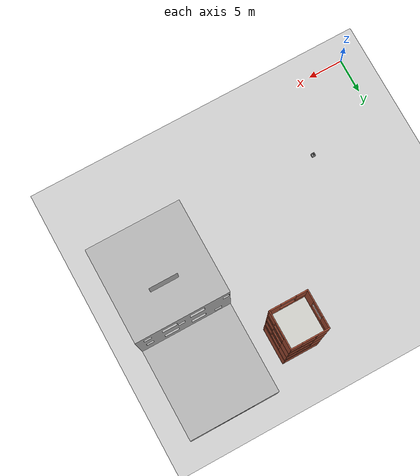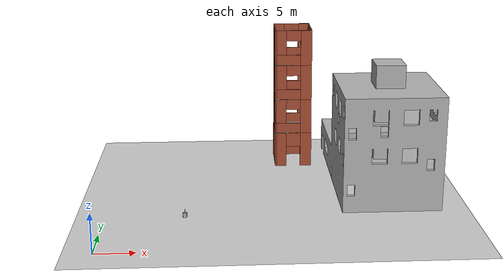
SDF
<sdf version="1.6">
 <world name="default">
  <light name="sun" type="directional">
   <pose>0 0 10 0 -0 0</pose>
   <diffuse>0.8 0.8 0.8 1</diffuse>
   <specular>0.1 0.1 0.1 1</specular>
   <attenuation>
    <range>10</range>
    <constant>0.9</constant>
    <linear>0.01</linear>
    <quadratic>0.001</quadratic>
   </attenuation>
   <direction>-0.5 0.5 -1</direction>
  </light>
  <model name="BuildingC3"><pose>30 10 0 0 0 0</pose><include><uri>model://BuildingC3</uri></include></model>
  <model name="cube_1"><pose>10 10 0 0 0 0</pose><include><uri>model://cubewithflames</uri></include></model>
  <model name="ground_plane">
   <pose>25 30 0 0 -0 0</pose>
   <static>1</static>
   <link name="link">
    <collision name="collision">
     <geometry><plane><normal>0 0 1</normal><size>100 60</size></plane></geometry>
     <surface><friction><ode><mu>100</mu><mu2>50</mu2></ode></friction></surface>
    </collision>
    <visual name="visual">
     <cast_shadows>0</cast_shadows>
     <geometry><plane><normal>0 0 1</normal><size>50 60</size></plane></geometry>
     <material><script><uri>file://materials/mbzirc.material</uri><name>mbzirc/Asfalt</name></script></material>
    </visual>
   </link>
  </model>
  <gravity>0 0 -9.8</gravity>
  <magnetic_field>6e-06 2.3e-05 -4.2e-05</magnetic_field>
  <atmosphere type="adiabatic"/>
  <wind><linear_velocity>0.1 0.1 0</linear_velocity></wind>
  <physics name="default_physics" default="0" type="ode">
   <max_step_size>0.004</max_step_size>
   <real_time_factor>1</real_time_factor>
   <real_time_update_rate>250</real_time_update_rate>
  </physics>
  <scene>
   <sky><clouds><speed>12</speed><mean_size>0.01</mean_size></clouds></sky>
   <shadows>1</shadows>
   <ambient>0.4 0.4 0.4 1</ambient>
   <background>0.7 0.7 0.7 1</background>
  </scene>
  <spherical_coordinates>
   <surface_model>EARTH_WGS84</surface_model>
   <latitude_deg>0</latitude_deg>
   <longitude_deg>0</longitude_deg>
   <elevation>0</elevation>
   <heading_deg>0</heading_deg>
  </spherical_coordinates>
  <plugin name="wind" filename="libWindPlugin.so">
   <horizontal>
    <magnitude>
     <time_for_rise>10</time_for_rise>
     <sin><amplitude_percent>0.05</amplitude_percent><period>60</period></sin>
     <noise type="gaussian"><mean>0</mean><stddev>0.0002</stddev></noise>
    </magnitude>
    <direction>
     <time_for_rise>30</time_for_rise>
     <sin><amplitude>5</amplitude><period>20</period></sin>
     <noise type="gaussian"><mean>0</mean><stddev>0.03</stddev></noise>
    </direction>
   </horizontal>
   <vertical><noise type="gaussian"><mean>0</mean><stddev>0.03</stddev></noise></vertical>
  </plugin>
  <model name="Challenge3_Building">
   <pose>25 30 0 0 -0 0</pose>
   <link name="Floor_2">
    <collision name="Floor_2_Collision">
     <geometry><box><size>5.15 5.15 0.1</size></box></geometry>
     <pose>0 0 0.05 0 -0 0</pose>
    </collision>
    <visual name="Floor_2_Visual">
     <pose>0 0 0.05 0 -0 0</pose>
     <geometry><box><size>5.15 5.15 0.1</size></box></geometry>
     <material>
      <script><uri>file://mbzirc.material</uri><name>Gazebo/CeilingTiled</name></script>
      <ambient>1 1 1 1</ambient>
     </material>
     <meta><layer>1</layer></meta>
    </visual>
    <pose>0 0 5 0 -0 0</pose>
   </link>
   <link name="Floor_3">
    <collision name="Floor_3_Collision">
     <geometry><box><size>5.15 5.15 0.1</size></box></geometry>
     <pose>0 0 0.05 0 -0 0</pose>
    </collision>
    <visual name="Floor_3_Visual">
     <pose>0 0 0.05 0 -0 0</pose>
     <geometry><box><size>5.15 5.15 0.1</size></box></geometry>
     <material>
      <script><uri>file://mbzirc.material</uri><name>Gazebo/CeilingTiled</name></script>
      <ambient>1 1 1 1</ambient>
     </material>
     <meta><layer>2</layer></meta>
    </visual>
    <pose>0 0 10 0 -0 0</pose>
   </link>
   <link name="Floor_4">
    <collision name="Floor_4_Collision">
     <geometry><box><size>5.15 5.15 0.1</size></box></geometry>
     <pose>0 0 0.05 0 -0 0</pose>
    </collision>
    <visual name="Floor_4_Visual">
     <pose>0 0 0.05 0 -0 0</pose>
     <geometry><box><size>5.15 5.15 0.1</size></box></geometry>
     <material>
      <script><uri>file://mbzirc.material</uri><name>Gazebo/CeilingTiled</name></script>
      <ambient>1 1 1 1</ambient>
     </material>
     <meta><layer>3</layer></meta>
    </visual>
    <pose>0 0 15 0 -0 0</pose>
   </link>
   <link name="Wall_01">
    <collision name="Wall_01_Collision">
     <geometry><box><size>5.2 0.2 5</size></box></geometry>
     <pose>0 0 2.5 0 -0 0</pose>
    </collision>
    <visual name="Wall_01_Visual">
     <pose>0 0 2.5 0 -0 0</pose>
     <geometry><box><size>5.2 0.2 5</size></box></geometry>
     <material>
      <script><uri>file://mbzirc.material</uri><name>Gazebo/Bricks</name></script>
      <ambient>1 0.5 0 1</ambient>
     </material>
     <meta><layer>0</layer></meta>
    </visual>
    <pose>-2.5 0 0 0 -0 1.5708</pose>
   </link>
   <link name="Wall_02">
    <collision name="Wall_02_Collision">
     <geometry><box><size>5.2 0.2 5</size></box></geometry>
     <pose>0 0 2.5 0 -0 0</pose>
    </collision>
    <visual name="Wall_02_Visual">
     <pose>0 0 2.5 0 -0 0</pose>
     <geometry><box><size>5.2 0.2 5</size></box></geometry>
     <material>
      <script><uri>file://mbzirc.material</uri><name>Gazebo/Bricks</name></script>
      <ambient>1 0.5 0 1</ambient>
     </material>
     <meta><layer>0</layer></meta>
    </visual>
    <pose>0 2.5 0 0 -0 0</pose>
   </link>
   <link name="Wall_03">
    <collision name="Wall_03_Collision">
     <geometry><box><size>5.2 0.2 5</size></box></geometry>
     <pose>0 0 2.5 0 -0 0</pose>
    </collision>
    <visual name="Wall_03_Visual">
     <pose>0 0 2.5 0 -0 0</pose>
     <geometry><box><size>5.2 0.2 5</size></box></geometry>
     <material>
      <script><uri>file://mbzirc.material</uri><name>Gazebo/Bricks</name></script>
      <ambient>1 0.5 0 1</ambient>
     </material>
     <meta><layer>0</layer></meta>
    </visual>
    <pose>2.5 0 0 0 0 -1.5708</pose>
   </link>
   <link name="Wall_04">
    <pose>0 -2.5 0 0 -0 3.14159</pose>
    <visual name="Wall_04_Visual_0">
     <pose>-1.8 0 2.5 0 -0 0</pose>
     <geometry><box><size>1.6 0.2 5</size></box></geometry>
     <material>
      <script><uri>file://mbzirc.material</uri><name>Gazebo/Bricks</name></script>
      <ambient>1 0.5 0 1</ambient>
     </material>
     <meta><layer>0</layer></meta>
    </visual>
    <collision name="Wall_04_Collision_0">
     <geometry><box><size>1.6 0.2 5</size></box></geometry>
     <pose>-1.8 0 2.5 0 -0 0</pose>
    </collision>
    <visual name="Wall_04_Visual_1">
     <pose>1.8 0 2.5 0 -0 0</pose>
     <geometry><box><size>1.6 0.2 5</size></box></geometry>
     <material>
      <script><uri>file://mbzirc.material</uri><name>Gazebo/Bricks</name></script>
      <ambient>1 0.5 0 1</ambient>
     </material>
     <meta><layer>0</layer></meta>
    </visual>
    <collision name="Wall_04_Collision_1">
     <geometry><box><size>1.6 0.2 5</size></box></geometry>
     <pose>1.8 0 2.5 0 -0 0</pose>
    </collision>
    <visual name="Wall_04_Visual_2">
     <pose>0 0 4 0 -0 0</pose>
     <geometry><box><size>2 0.2 2</size></box></geometry>
     <material>
      <script><uri>file://mbzirc.material</uri><name>Gazebo/Bricks</name></script>
      <ambient>1 0.5 0 1</ambient>
     </material>
     <meta><layer>0</layer></meta>
    </visual>
    <collision name="Wall_04_Collision_2">
     <geometry><box><size>2 0.2 2</size></box></geometry>
     <pose>0 0 4 0 -0 0</pose>
    </collision>
   </link>
   <link name="Wall_05">
    <pose>-2.5 0 5 0 -0 1.5708</pose>
    <visual name="Wall_05_Visual_0">
     <pose>-1.7875 0 2.5 0 -0 0</pose>
     <geometry><box><size>1.575 0.15 5</size></box></geometry>
     <material>
      <script><uri>file://mbzirc.material</uri><name>Gazebo/Bricks</name></script>
      <ambient>1 0.5 0 1</ambient>
     </material>
     <meta><layer>1</layer></meta>
    </visual>
    <collision name="Wall_05_Collision_0">
     <geometry><box><size>1.575 0.15 5</size></box></geometry>
     <pose>-1.7875 0 2.5 0 -0 0</pose>
    </collision>
    <visual name="Wall_05_Visual_1">
     <pose>0.7875 0 0.75 0 -0 0</pose>
     <geometry><box><size>3.575 0.15 1.5</size></box></geometry>
     <material>
      <script><uri>file://mbzirc.material</uri><name>Gazebo/Bricks</name></script>
      <ambient>1 0.5 0 1</ambient>
     </material>
     <meta><layer>1</layer></meta>
    </visual>
    <collision name="Wall_05_Collision_1">
     <geometry><box><size>3.575 0.15 1.5</size></box></geometry>
     <pose>0.7875 0 0.75 0 -0 0</pose>
    </collision>
    <visual name="Wall_05_Visual_2">
     <pose>1.7875 0 3.25 0 -0 0</pose>
     <geometry><box><size>1.575 0.15 3.5</size></box></geometry>
     <material>
      <script><uri>file://mbzirc.material</uri><name>Gazebo/Bricks</name></script>
      <ambient>1 0.5 0 1</ambient>
     </material>
     <meta><layer>1</layer></meta>
    </visual>
    <collision name="Wall_05_Collision_2">
     <geometry><box><size>1.575 0.15 3.5</size></box></geometry>
     <pose>1.7875 0 3.25 0 -0 0</pose>
    </collision>
    <visual name="Wall_05_Visual_3">
     <pose>0 0 4.25 0 -0 0</pose>
     <geometry><box><size>2 0.15 1.5</size></box></geometry>
     <material>
      <script><uri>file://mbzirc.material</uri><name>Gazebo/Bricks</name></script>
      <ambient>1 0.5 0 1</ambient>
     </material>
     <meta><layer>1</layer></meta>
    </visual>
    <collision name="Wall_05_Collision_3">
     <geometry><box><size>2 0.15 1.5</size></box></geometry>
     <pose>0 0 4.25 0 -0 0</pose>
    </collision>
   </link>
   <link name="Wall_06">
    <pose>0 2.5 5 0 -0 0</pose>
    <visual name="Wall_06_Visual_0">
     <pose>-1.7875 0 2.5 0 -0 0</pose>
     <geometry><box><size>1.575 0.15 5</size></box></geometry>
     <material>
      <script><uri>file://mbzirc.material</uri><name>Gazebo/Bricks</name></script>
      <ambient>1 0.5 0 1</ambient>
     </material>
     <meta><layer>1</layer></meta>
    </visual>
    <collision name="Wall_06_Collision_0">
     <geometry><box><size>1.575 0.15 5</size></box></geometry>
     <pose>-1.7875 0 2.5 0 -0 0</pose>
    </collision>
    <visual name="Wall_06_Visual_1">
     <pose>0.7875 0 0.75 0 -0 0</pose>
     <geometry><box><size>3.575 0.15 1.5</size></box></geometry>
     <material>
      <script><uri>file://mbzirc.material</uri><name>Gazebo/Bricks</name></script>
      <ambient>1 0.5 0 1</ambient>
     </material>
     <meta><layer>1</layer></meta>
    </visual>
    <collision name="Wall_06_Collision_1">
     <geometry><box><size>3.575 0.15 1.5</size></box></geometry>
     <pose>0.7875 0 0.75 0 -0 0</pose>
    </collision>
    <visual name="Wall_06_Visual_2">
     <pose>1.7875 0 3.25 0 -0 0</pose>
     <geometry><box><size>1.575 0.15 3.5</size></box></geometry>
     <material>
      <script><uri>file://mbzirc.material</uri><name>Gazebo/Bricks</name></script>
      <ambient>1 0.5 0 1</ambient>
     </material>
     <meta><layer>1</layer></meta>
    </visual>
    <collision name="Wall_06_Collision_2">
     <geometry><box><size>1.575 0.15 3.5</size></box></geometry>
     <pose>1.7875 0 3.25 0 -0 0</pose>
    </collision>
    <visual name="Wall_06_Visual_3">
     <pose>0 0 4.25 0 -0 0</pose>
     <geometry><box><size>2 0.15 1.5</size></box></geometry>
     <material>
      <script><uri>file://mbzirc.material</uri><name>Gazebo/Bricks</name></script>
      <ambient>1 0.5 0 1</ambient>
     </material>
     <meta><layer>1</layer></meta>
    </visual>
    <collision name="Wall_06_Collision_3">
     <geometry><box><size>2 0.15 1.5</size></box></geometry>
     <pose>0 0 4.25 0 -0 0</pose>
    </collision>
   </link>
   <link name="Wall_07">
    <pose>2.5 0 5 0 0 -1.5708</pose>
    <visual name="Wall_07_Visual_0">
     <pose>-1.7875 0 2.5 0 -0 0</pose>
     <geometry><box><size>1.575 0.15 5</size></box></geometry>
     <material>
      <script><uri>file://mbzirc.material</uri><name>Gazebo/Bricks</name></script>
      <ambient>1 0.5 0 1</ambient>
     </material>
     <meta><layer>1</layer></meta>
    </visual>
    <collision name="Wall_07_Collision_0">
     <geometry><box><size>1.575 0.15 5</size></box></geometry>
     <pose>-1.7875 0 2.5 0 -0 0</pose>
    </collision>
    <visual name="Wall_07_Visual_1">
     <pose>0.7875 0 0.75 0 -0 0</pose>
     <geometry><box><size>3.575 0.15 1.5</size></box></geometry>
     <material>
      <script><uri>file://mbzirc.material</uri><name>Gazebo/Bricks</name></script>
      <ambient>1 0.5 0 1</ambient>
     </material>
     <meta><layer>1</layer></meta>
    </visual>
    <collision name="Wall_07_Collision_1">
     <geometry><box><size>3.575 0.15 1.5</size></box></geometry>
     <pose>0.7875 0 0.75 0 -0 0</pose>
    </collision>
    <visual name="Wall_07_Visual_2">
     <pose>1.7875 0 3.25 0 -0 0</pose>
     <geometry><box><size>1.575 0.15 3.5</size></box></geometry>
     <material>
      <script><uri>file://mbzirc.material</uri><name>Gazebo/Bricks</name></script>
      <ambient>1 0.5 0 1</ambient>
     </material>
     <meta><layer>1</layer></meta>
    </visual>
    <collision name="Wall_07_Collision_2">
     <geometry><box><size>1.575 0.15 3.5</size></box></geometry>
     <pose>1.7875 0 3.25 0 -0 0</pose>
    </collision>
    <visual name="Wall_07_Visual_3">
     <pose>0 0 4.25 0 -0 0</pose>
     <geometry><box><size>2 0.15 1.5</size></box></geometry>
     <material>
      <script><uri>file://mbzirc.material</uri><name>Gazebo/Bricks</name></script>
      <ambient>1 0.5 0 1</ambient>
     </material>
     <meta><layer>1</layer></meta>
    </visual>
    <collision name="Wall_07_Collision_3">
     <geometry><box><size>2 0.15 1.5</size></box></geometry>
     <pose>0 0 4.25 0 -0 0</pose>
    </collision>
   </link>
   <link name="Wall_08">
    <pose>0 -2.5 5 0 -0 3.14159</pose>
    <visual name="Wall_08_Visual_0">
     <pose>-1.7875 0 2.5 0 -0 0</pose>
     <geometry><box><size>1.575 0.15 5</size></box></geometry>
     <material>
      <script><uri>file://mbzirc.material</uri><name>Gazebo/Bricks</name></script>
      <ambient>1 0.5 0 1</ambient>
     </material>
     <meta><layer>1</layer></meta>
    </visual>
    <collision name="Wall_08_Collision_0">
     <geometry><box><size>1.575 0.15 5</size></box></geometry>
     <pose>-1.7875 0 2.5 0 -0 0</pose>
    </collision>
    <visual name="Wall_08_Visual_1">
     <pose>0.7875 0 0.75 0 -0 0</pose>
     <geometry><box><size>3.575 0.15 1.5</size></box></geometry>
     <material>
      <script><uri>file://mbzirc.material</uri><name>Gazebo/Bricks</name></script>
      <ambient>1 0.5 0 1</ambient>
     </material>
     <meta><layer>1</layer></meta>
    </visual>
    <collision name="Wall_08_Collision_1">
     <geometry><box><size>3.575 0.15 1.5</size></box></geometry>
     <pose>0.7875 0 0.75 0 -0 0</pose>
    </collision>
    <visual name="Wall_08_Visual_2">
     <pose>1.7875 0 3.25 0 -0 0</pose>
     <geometry><box><size>1.575 0.15 3.5</size></box></geometry>
     <material>
      <script><uri>file://mbzirc.material</uri><name>Gazebo/Bricks</name></script>
      <ambient>1 0.5 0 1</ambient>
     </material>
     <meta><layer>1</layer></meta>
    </visual>
    <collision name="Wall_08_Collision_2">
     <geometry><box><size>1.575 0.15 3.5</size></box></geometry>
     <pose>1.7875 0 3.25 0 -0 0</pose>
    </collision>
    <visual name="Wall_08_Visual_3">
     <pose>0 0 4.25 0 -0 0</pose>
     <geometry><box><size>2 0.15 1.5</size></box></geometry>
     <material>
      <script><uri>file://mbzirc.material</uri><name>Gazebo/Bricks</name></script>
      <ambient>1 0.5 0 1</ambient>
     </material>
     <meta><layer>1</layer></meta>
    </visual>
    <collision name="Wall_08_Collision_3">
     <geometry><box><size>2 0.15 1.5</size></box></geometry>
     <pose>0 0 4.25 0 -0 0</pose>
    </collision>
   </link>
   <link name="Wall_09">
    <pose>-2.5 0 10 0 -0 1.5708</pose>
    <visual name="Wall_09_Visual_0">
     <pose>-1.7875 0 2.5 0 -0 0</pose>
     <geometry><box><size>1.575 0.15 5</size></box></geometry>
     <material>
      <script><uri>file://mbzirc.material</uri><name>Gazebo/Bricks</name></script>
      <ambient>1 0.5 0 1</ambient>
     </material>
     <meta><layer>2</layer></meta>
    </visual>
    <collision name="Wall_09_Collision_0">
     <geometry><box><size>1.575 0.15 5</size></box></geometry>
     <pose>-1.7875 0 2.5 0 -0 0</pose>
    </collision>
    <visual name="Wall_09_Visual_1">
     <pose>0.7875 0 0.75 0 -0 0</pose>
     <geometry><box><size>3.575 0.15 1.5</size></box></geometry>
     <material>
      <script><uri>file://mbzirc.material</uri><name>Gazebo/Bricks</name></script>
      <ambient>1 0.5 0 1</ambient>
     </material>
     <meta><layer>2</layer></meta>
    </visual>
    <collision name="Wall_09_Collision_1">
     <geometry><box><size>3.575 0.15 1.5</size></box></geometry>
     <pose>0.7875 0 0.75 0 -0 0</pose>
    </collision>
    <visual name="Wall_09_Visual_2">
     <pose>1.7875 0 3.25 0 -0 0</pose>
     <geometry><box><size>1.575 0.15 3.5</size></box></geometry>
     <material>
      <script><uri>file://mbzirc.material</uri><name>Gazebo/Bricks</name></script>
      <ambient>1 0.5 0 1</ambient>
     </material>
     <meta><layer>2</layer></meta>
    </visual>
    <collision name="Wall_09_Collision_2">
     <geometry><box><size>1.575 0.15 3.5</size></box></geometry>
     <pose>1.7875 0 3.25 0 -0 0</pose>
    </collision>
    <visual name="Wall_09_Visual_3">
     <pose>0 0 4.25 0 -0 0</pose>
     <geometry><box><size>2 0.15 1.5</size></box></geometry>
     <material>
      <script><uri>file://mbzirc.material</uri><name>Gazebo/Bricks</name></script>
      <ambient>1 0.5 0 1</ambient>
     </material>
     <meta><layer>2</layer></meta>
    </visual>
    <collision name="Wall_09_Collision_3">
     <geometry><box><size>2 0.15 1.5</size></box></geometry>
     <pose>0 0 4.25 0 -0 0</pose>
    </collision>
   </link>
   <link name="Wall_10">
    <pose>0 2.5 10 0 -0 0</pose>
    <visual name="Wall_10_Visual_0">
     <pose>-1.7875 0 2.5 0 -0 0</pose>
     <geometry><box><size>1.575 0.15 5</size></box></geometry>
     <material>
      <script><uri>file://mbzirc.material</uri><name>Gazebo/Bricks</name></script>
      <ambient>1 0.5 0 1</ambient>
     </material>
     <meta><layer>2</layer></meta>
    </visual>
    <collision name="Wall_10_Collision_0">
     <geometry><box><size>1.575 0.15 5</size></box></geometry>
     <pose>-1.7875 0 2.5 0 -0 0</pose>
    </collision>
    <visual name="Wall_10_Visual_1">
     <pose>0.7875 0 0.75 0 -0 0</pose>
     <geometry><box><size>3.575 0.15 1.5</size></box></geometry>
     <material>
      <script><uri>file://mbzirc.material</uri><name>Gazebo/Bricks</name></script>
      <ambient>1 0.5 0 1</ambient>
     </material>
     <meta><layer>2</layer></meta>
    </visual>
    <collision name="Wall_10_Collision_1">
     <geometry><box><size>3.575 0.15 1.5</size></box></geometry>
     <pose>0.7875 0 0.75 0 -0 0</pose>
    </collision>
    <visual name="Wall_10_Visual_2">
     <pose>1.7875 0 3.25 0 -0 0</pose>
     <geometry><box><size>1.575 0.15 3.5</size></box></geometry>
     <material>
      <script><uri>file://mbzirc.material</uri><name>Gazebo/Bricks</name></script>
      <ambient>1 0.5 0 1</ambient>
     </material>
     <meta><layer>2</layer></meta>
    </visual>
    <collision name="Wall_10_Collision_2">
     <geometry><box><size>1.575 0.15 3.5</size></box></geometry>
     <pose>1.7875 0 3.25 0 -0 0</pose>
    </collision>
    <visual name="Wall_10_Visual_3">
     <pose>0 0 4.25 0 -0 0</pose>
     <geometry><box><size>2 0.15 1.5</size></box></geometry>
     <material>
      <script><uri>file://mbzirc.material</uri><name>Gazebo/Bricks</name></script>
      <ambient>1 0.5 0 1</ambient>
     </material>
     <meta><layer>2</layer></meta>
    </visual>
    <collision name="Wall_10_Collision_3">
     <geometry><box><size>2 0.15 1.5</size></box></geometry>
     <pose>0 0 4.25 0 -0 0</pose>
    </collision>
   </link>
   <link name="Wall_11">
    <pose>2.5 0 10 0 0 -1.5708</pose>
    <visual name="Wall_11_Visual_0">
     <pose>-1.7875 0 2.5 0 -0 0</pose>
     <geometry><box><size>1.575 0.15 5</size></box></geometry>
     <material>
      <script><uri>file://mbzirc.material</uri><name>Gazebo/Bricks</name></script>
      <ambient>1 0.5 0 1</ambient>
     </material>
     <meta><layer>2</layer></meta>
    </visual>
    <collision name="Wall_11_Collision_0">
     <geometry><box><size>1.575 0.15 5</size></box></geometry>
     <pose>-1.7875 0 2.5 0 -0 0</pose>
    </collision>
    <visual name="Wall_11_Visual_1">
     <pose>0.7875 0 0.75 0 -0 0</pose>
     <geometry><box><size>3.575 0.15 1.5</size></box></geometry>
     <material>
      <script><uri>file://mbzirc.material</uri><name>Gazebo/Bricks</name></script>
      <ambient>1 0.5 0 1</ambient>
     </material>
     <meta><layer>2</layer></meta>
    </visual>
    <collision name="Wall_11_Collision_1">
     <geometry><box><size>3.575 0.15 1.5</size></box></geometry>
     <pose>0.7875 0 0.75 0 -0 0</pose>
    </collision>
    <visual name="Wall_11_Visual_2">
     <pose>1.7875 0 3.25 0 -0 0</pose>
     <geometry><box><size>1.575 0.15 3.5</size></box></geometry>
     <material>
      <script><uri>file://mbzirc.material</uri><name>Gazebo/Bricks</name></script>
      <ambient>1 0.5 0 1</ambient>
     </material>
     <meta><layer>2</layer></meta>
    </visual>
    <collision name="Wall_11_Collision_2">
     <geometry><box><size>1.575 0.15 3.5</size></box></geometry>
     <pose>1.7875 0 3.25 0 -0 0</pose>
    </collision>
    <visual name="Wall_11_Visual_3">
     <pose>0 0 4.25 0 -0 0</pose>
     <geometry><box><size>2 0.15 1.5</size></box></geometry>
     <material>
      <script><uri>file://mbzirc.material</uri><name>Gazebo/Bricks</name></script>
      <ambient>1 0.5 0 1</ambient>
     </material>
     <meta><layer>2</layer></meta>
    </visual>
    <collision name="Wall_11_Collision_3">
     <geometry><box><size>2 0.15 1.5</size></box></geometry>
     <pose>0 0 4.25 0 -0 0</pose>
    </collision>
   </link>
   <link name="Wall_12">
    <pose>0 -2.5 10 0 -0 3.14159</pose>
    <visual name="Wall_12_Visual_0">
     <pose>-1.7875 0 2.5 0 -0 0</pose>
     <geometry><box><size>1.575 0.15 5</size></box></geometry>
     <material>
      <script><uri>file://mbzirc.material</uri><name>Gazebo/Bricks</name></script>
      <ambient>1 0.5 0 1</ambient>
     </material>
     <meta><layer>2</layer></meta>
    </visual>
    <collision name="Wall_12_Collision_0">
     <geometry><box><size>1.575 0.15 5</size></box></geometry>
     <pose>-1.7875 0 2.5 0 -0 0</pose>
    </collision>
    <visual name="Wall_12_Visual_1">
     <pose>0.7875 0 0.75 0 -0 0</pose>
     <geometry><box><size>3.575 0.15 1.5</size></box></geometry>
     <material>
      <script><uri>file://mbzirc.material</uri><name>Gazebo/Bricks</name></script>
      <ambient>1 0.5 0 1</ambient>
     </material>
     <meta><layer>2</layer></meta>
    </visual>
    <collision name="Wall_12_Collision_1">
     <geometry><box><size>3.575 0.15 1.5</size></box></geometry>
     <pose>0.7875 0 0.75 0 -0 0</pose>
    </collision>
    <visual name="Wall_12_Visual_2">
     <pose>1.7875 0 3.25 0 -0 0</pose>
     <geometry><box><size>1.575 0.15 3.5</size></box></geometry>
     <material>
      <script><uri>file://mbzirc.material</uri><name>Gazebo/Bricks</name></script>
      <ambient>1 0.5 0 1</ambient>
     </material>
     <meta><layer>2</layer></meta>
    </visual>
    <collision name="Wall_12_Collision_2">
     <geometry><box><size>1.575 0.15 3.5</size></box></geometry>
     <pose>1.7875 0 3.25 0 -0 0</pose>
    </collision>
    <visual name="Wall_12_Visual_3">
     <pose>0 0 4.25 0 -0 0</pose>
     <geometry><box><size>2 0.15 1.5</size></box></geometry>
     <material>
      <script><uri>file://mbzirc.material</uri><name>Gazebo/Bricks</name></script>
      <ambient>1 0.5 0 1</ambient>
     </material>
     <meta><layer>2</layer></meta>
    </visual>
    <collision name="Wall_12_Collision_3">
     <geometry><box><size>2 0.15 1.5</size></box></geometry>
     <pose>0 0 4.25 0 -0 0</pose>
    </collision>
   </link>
   <link name="Wall_13">
    <pose>-2.5 0 15 0 -0 1.5708</pose>
    <visual name="Wall_13_Visual_0">
     <pose>-1.7875 0 2.5 0 -0 0</pose>
     <geometry><box><size>1.575 0.15 5</size></box></geometry>
     <material>
      <script><uri>file://mbzirc.material</uri><name>Gazebo/Bricks</name></script>
      <ambient>1 0.5 0 1</ambient>
     </material>
     <meta><layer>3</layer></meta>
    </visual>
    <collision name="Wall_13_Collision_0">
     <geometry><box><size>1.575 0.15 5</size></box></geometry>
     <pose>-1.7875 0 2.5 0 -0 0</pose>
    </collision>
    <visual name="Wall_13_Visual_1">
     <pose>0.7875 0 0.75 0 -0 0</pose>
     <geometry><box><size>3.575 0.15 1.5</size></box></geometry>
     <material>
      <script><uri>file://mbzirc.material</uri><name>Gazebo/Bricks</name></script>
      <ambient>1 0.5 0 1</ambient>
     </material>
     <meta><layer>3</layer></meta>
    </visual>
    <collision name="Wall_13_Collision_1">
     <geometry><box><size>3.575 0.15 1.5</size></box></geometry>
     <pose>0.7875 0 0.75 0 -0 0</pose>
    </collision>
    <visual name="Wall_13_Visual_2">
     <pose>1.7875 0 3.25 0 -0 0</pose>
     <geometry><box><size>1.575 0.15 3.5</size></box></geometry>
     <material>
      <script><uri>file://mbzirc.material</uri><name>Gazebo/Bricks</name></script>
      <ambient>1 0.5 0 1</ambient>
     </material>
     <meta><layer>3</layer></meta>
    </visual>
    <collision name="Wall_13_Collision_2">
     <geometry><box><size>1.575 0.15 3.5</size></box></geometry>
     <pose>1.7875 0 3.25 0 -0 0</pose>
    </collision>
    <visual name="Wall_13_Visual_3">
     <pose>0 0 4.25 0 -0 0</pose>
     <geometry><box><size>2 0.15 1.5</size></box></geometry>
     <material>
      <script><uri>file://mbzirc.material</uri><name>Gazebo/Bricks</name></script>
      <ambient>1 0.5 0 1</ambient>
     </material>
     <meta><layer>3</layer></meta>
    </visual>
    <collision name="Wall_13_Collision_3">
     <geometry><box><size>2 0.15 1.5</size></box></geometry>
     <pose>0 0 4.25 0 -0 0</pose>
    </collision>
   </link>
   <link name="Wall_14">
    <pose>0 2.5 15 0 -0 0</pose>
    <visual name="Wall_14_Visual_0">
     <pose>-1.7875 0 2.5 0 -0 0</pose>
     <geometry><box><size>1.575 0.15 5</size></box></geometry>
     <material>
      <script><uri>file://mbzirc.material</uri><name>Gazebo/Bricks</name></script>
      <ambient>1 0.5 0 1</ambient>
     </material>
     <meta><layer>3</layer></meta>
    </visual>
    <collision name="Wall_14_Collision_0">
     <geometry><box><size>1.575 0.15 5</size></box></geometry>
     <pose>-1.7875 0 2.5 0 -0 0</pose>
    </collision>
    <visual name="Wall_14_Visual_1">
     <pose>0.7875 0 0.75 0 -0 0</pose>
     <geometry><box><size>3.575 0.15 1.5</size></box></geometry>
     <material>
      <script><uri>file://mbzirc.material</uri><name>Gazebo/Bricks</name></script>
      <ambient>1 0.5 0 1</ambient>
     </material>
     <meta><layer>3</layer></meta>
    </visual>
    <collision name="Wall_14_Collision_1">
     <geometry><box><size>3.575 0.15 1.5</size></box></geometry>
     <pose>0.7875 0 0.75 0 -0 0</pose>
    </collision>
    <visual name="Wall_14_Visual_2">
     <pose>1.7875 0 3.25 0 -0 0</pose>
     <geometry><box><size>1.575 0.15 3.5</size></box></geometry>
     <material>
      <script><uri>file://mbzirc.material</uri><name>Gazebo/Bricks</name></script>
      <ambient>1 0.5 0 1</ambient>
     </material>
     <meta><layer>3</layer></meta>
    </visual>
    <collision name="Wall_14_Collision_2">
     <geometry><box><size>1.575 0.15 3.5</size></box></geometry>
     <pose>1.7875 0 3.25 0 -0 0</pose>
    </collision>
    <visual name="Wall_14_Visual_3">
     <pose>0 0 4.25 0 -0 0</pose>
     <geometry><box><size>2 0.15 1.5</size></box></geometry>
     <material>
      <script><uri>file://mbzirc.material</uri><name>Gazebo/Bricks</name></script>
      <ambient>1 0.5 0 1</ambient>
     </material>
     <meta><layer>3</layer></meta>
    </visual>
    <collision name="Wall_14_Collision_3">
     <geometry><box><size>2 0.15 1.5</size></box></geometry>
     <pose>0 0 4.25 0 -0 0</pose>
    </collision>
   </link>
   <link name="Wall_15">
    <pose>2.5 0 15 0 0 -1.5708</pose>
    <visual name="Wall_15_Visual_0">
     <pose>-1.7875 0 2.5 0 -0 0</pose>
     <geometry><box><size>1.575 0.15 5</size></box></geometry>
     <material>
      <script><uri>file://mbzirc.material</uri><name>Gazebo/Bricks</name></script>
      <ambient>1 0.5 0 1</ambient>
     </material>
     <meta><layer>3</layer></meta>
    </visual>
    <collision name="Wall_15_Collision_0">
     <geometry><box><size>1.575 0.15 5</size></box></geometry>
     <pose>-1.7875 0 2.5 0 -0 0</pose>
    </collision>
    <visual name="Wall_15_Visual_1">
     <pose>0.7875 0 0.75 0 -0 0</pose>
     <geometry><box><size>3.575 0.15 1.5</size></box></geometry>
     <material>
      <script><uri>file://mbzirc.material</uri><name>Gazebo/Bricks</name></script>
      <ambient>1 0.5 0 1</ambient>
     </material>
     <meta><layer>3</layer></meta>
    </visual>
    <collision name="Wall_15_Collision_1">
     <geometry><box><size>3.575 0.15 1.5</size></box></geometry>
     <pose>0.7875 0 0.75 0 -0 0</pose>
    </collision>
    <visual name="Wall_15_Visual_2">
     <pose>1.7875 0 3.25 0 -0 0</pose>
     <geometry><box><size>1.575 0.15 3.5</size></box></geometry>
     <material>
      <script><uri>file://mbzirc.material</uri><name>Gazebo/Bricks</name></script>
      <ambient>1 0.5 0 1</ambient>
     </material>
     <meta><layer>3</layer></meta>
    </visual>
    <collision name="Wall_15_Collision_2">
     <geometry><box><size>1.575 0.15 3.5</size></box></geometry>
     <pose>1.7875 0 3.25 0 -0 0</pose>
    </collision>
    <visual name="Wall_15_Visual_3">
     <pose>0 0 4.25 0 -0 0</pose>
     <geometry><box><size>2 0.15 1.5</size></box></geometry>
     <material>
      <script><uri>file://mbzirc.material</uri><name>Gazebo/Bricks</name></script>
      <ambient>1 0.5 0 1</ambient>
     </material>
     <meta><layer>3</layer></meta>
    </visual>
    <collision name="Wall_15_Collision_3">
     <geometry><box><size>2 0.15 1.5</size></box></geometry>
     <pose>0 0 4.25 0 -0 0</pose>
    </collision>
   </link>
   <link name="Wall_16">
    <pose>0 -2.5 15 0 -0 3.14159</pose>
    <visual name="Wall_16_Visual_0">
     <pose>-1.7875 0 2.5 0 -0 0</pose>
     <geometry><box><size>1.575 0.15 5</size></box></geometry>
     <material>
      <script><uri>file://mbzirc.material</uri><name>Gazebo/Bricks</name></script>
      <ambient>1 0.5 0 1</ambient>
     </material>
     <meta><layer>3</layer></meta>
    </visual>
    <collision name="Wall_16_Collision_0">
     <geometry><box><size>1.575 0.15 5</size></box></geometry>
     <pose>-1.7875 0 2.5 0 -0 0</pose>
    </collision>
    <visual name="Wall_16_Visual_1">
     <pose>0.7875 0 0.75 0 -0 0</pose>
     <geometry><box><size>3.575 0.15 1.5</size></box></geometry>
     <material>
      <script><uri>file://mbzirc.material</uri><name>Gazebo/Bricks</name></script>
      <ambient>1 0.5 0 1</ambient>
     </material>
     <meta><layer>3</layer></meta>
    </visual>
    <collision name="Wall_16_Collision_1">
     <geometry><box><size>3.575 0.15 1.5</size></box></geometry>
     <pose>0.7875 0 0.75 0 -0 0</pose>
    </collision>
    <visual name="Wall_16_Visual_2">
     <pose>1.7875 0 3.25 0 -0 0</pose>
     <geometry><box><size>1.575 0.15 3.5</size></box></geometry>
     <material>
      <script><uri>file://mbzirc.material</uri><name>Gazebo/Bricks</name></script>
      <ambient>1 0.5 0 1</ambient>
     </material>
     <meta><layer>3</layer></meta>
    </visual>
    <collision name="Wall_16_Collision_2">
     <geometry><box><size>1.575 0.15 3.5</size></box></geometry>
     <pose>1.7875 0 3.25 0 -0 0</pose>
    </collision>
    <visual name="Wall_16_Visual_3">
     <pose>0 0 4.25 0 -0 0</pose>
     <geometry><box><size>2 0.15 1.5</size></box></geometry>
     <material>
      <script><uri>file://mbzirc.material</uri><name>Gazebo/Bricks</name></script>
      <ambient>1 0.5 0 1</ambient>
     </material>
     <meta><layer>3</layer></meta>
    </visual>
    <collision name="Wall_16_Collision_3">
     <geometry><box><size>2 0.15 1.5</size></box></geometry>
     <pose>0 0 4.25 0 -0 0</pose>
    </collision>
   </link>
   <static>1</static>
  </model>
  <plugin name="factory" filename="libdroplet_factory.so"/>
 </world>
</sdf>

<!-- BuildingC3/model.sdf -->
<sdf version='1.6'>
  <model name='BuildingC3'>
    <link name='link_0'>
      <pose frame=''>0 0 0 0 -0 0</pose>
      <inertial>
        <mass>1</mass>
        <inertia>
          <ixx>0.166667</ixx>
          <ixy>0</ixy>
          <ixz>0</ixz>
          <iyy>0.166667</iyy>
          <iyz>0</iyz>
          <izz>0.166667</izz>
        </inertia>
        <pose frame=''>0 0 0 0 -0 0</pose>
      </inertial>
      <gravity>1</gravity>
      <self_collide>0</self_collide>
      <kinematic>0</kinematic>
      <visual name='ModelPreview_0::link_0::visual_1'>
        <pose frame=''>0 0 0 0 -0 0</pose>
        <geometry>
          <mesh>
            <uri>model://BuildingC3/meshes/BuildingFloorsv2.stl</uri>
            <scale>1 1 1</scale>
          </mesh>
        </geometry>
        <material>
          <lighting>1</lighting>
          <script>
            <uri>model://BuildingC3/materials/scripts</uri>
            <uri>model://BuildingC3/materials/textures</uri>
            <name>building_floor</name>
          </script>
          <ambient>0.3 0.3 0.3 1</ambient>
          <diffuse>0.7 0.7 0.7 1</diffuse>
          <specular>0.01 0.01 0.01 1</specular>
          <emissive>0 0 0 1</emissive>
          <shader type='vertex'>
            <normal_map>__default__</normal_map>
          </shader>
        </material>
        <cast_shadows>1</cast_shadows>
        <transparency>0</transparency>
      </visual>
      <visual name='visual'>
        <pose frame=''>0 0 0 0 -0 0</pose>
        <geometry>
          <mesh>
            <uri>model://BuildingC3/meshes/BuildingHulkv2.stl</uri>
            <scale>1 1 1</scale>
          </mesh>
        </geometry>
        <material>
           <lighting>1</lighting>
          <script>
            <uri>model://BuildingC3/materials/scripts</uri>
            <uri>model://BuildingC3/materials/textures</uri>
            <name>ladrillo</name>
          </script>
          <ambient>1 0.5 0.3 1</ambient>
          <diffuse>0.7 0.7 0.7 1</diffuse>
          <specular>0.01 0.01 0.01 1</specular>
          <emissive>0 0 0 1</emissive>
          <shader type='vertex'>
            <normal_map>__default__</normal_map>
          </shader>
        </material>
        <cast_shadows>1</cast_shadows>
        <transparency>0</transparency>
      </visual>
      <collision name='collision'>
        <laser_retro>0</laser_retro>
        <max_contacts>10</max_contacts>
        <pose frame=''>0 0 0 0 -0 0</pose>
        <geometry>
          <mesh>
            <uri>model://BuildingC3/meshes/Building1Piecev2.stl</uri>
            <scale>1 1 1</scale>
          </mesh>
        </geometry>
        <surface>
          <friction>
            <ode>
              <mu>1</mu>
              <mu2>1</mu2>
              <fdir1>0 0 0</fdir1>
              <slip1>0</slip1>
              <slip2>0</slip2>
            </ode>
            <torsional>
              <coefficient>1</coefficient>
              <patch_radius>0</patch_radius>
              <surface_radius>0</surface_radius>
              <use_patch_radius>1</use_patch_radius>
              <ode>
                <slip>0</slip>
              </ode>
            </torsional>
          </friction>
          <bounce>
            <restitution_coefficient>0</restitution_coefficient>
            <threshold>1e+06</threshold>
          </bounce>
          <contact>
            <collide_without_contact>0</collide_without_contact>
            <collide_without_contact_bitmask>1</collide_without_contact_bitmask>
            <collide_bitmask>1</collide_bitmask>
            <ode>
              <soft_cfm>0</soft_cfm>
              <soft_erp>0.2</soft_erp>
              <kp>1e+13</kp>
              <kd>1</kd>
              <max_vel>0.01</max_vel>
              <min_depth>0</min_depth>
            </ode>
            <bullet>
              <split_impulse>1</split_impulse>
              <split_impulse_penetration_threshold>-0.01</split_impulse_penetration_threshold>
              <soft_cfm>0</soft_cfm>
              <soft_erp>0.2</soft_erp>
              <kp>1e+13</kp>
              <kd>1</kd>
            </bullet>
          </contact>
        </surface>
      </collision>
    </link>
    <static>1</static>
    <allow_auto_disable>1</allow_auto_disable>
  </model>
</sdf>

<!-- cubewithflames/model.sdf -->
<sdf version='1.6'>
  <model name='cubewithflames'>
    <link name='link_0'>
      <pose frame=''>-0.075 0.1 0 0 -0 0</pose>
      <inertial>
        <mass>1</mass>
        <inertia>
          <ixx>0.166667</ixx>
          <ixy>0</ixy>
          <ixz>0</ixz>
          <iyy>0.166667</iyy>
          <iyz>0</iyz>
          <izz>0.166667</izz>
        </inertia>
        <pose frame=''>0 0 0 0 -0 0</pose>
      </inertial>
      <gravity>1</gravity>
      <self_collide>0</self_collide>
      <kinematic>0</kinematic>
      <visual name='visual'>
        <pose frame=''>0 0 0 0 -0 0</pose>
        <geometry>
          <mesh>
            <uri>model://cubewithflames/meshes/Cube_fire.dae</uri>
            <scale>0.005 0.005 0.005</scale>
          </mesh>
        </geometry>
        <material>
          <lighting>1</lighting>
          <script>
            <uri>model://cubewithflames/materials/scripts</uri>
            <uri>model://cubewithflames/materials/textures</uri>
            <name>fire</name>
          </script>
          <ambient>0.3 0.3 0.3 1</ambient>
          <diffuse>0.7 0.7 0.7 1</diffuse>
          <specular>0.01 0.01 0.01 1</specular>
          <emissive>0 0 0 1</emissive>
          <shader type='vertex'>
            <normal_map>__default__</normal_map>
          </shader>
        </material>
        <cast_shadows>1</cast_shadows>
        <transparency>0</transparency>
      </visual>
      <collision name='collision'>
        <laser_retro>0</laser_retro>
        <max_contacts>10</max_contacts>
        <pose frame=''>0 0 0.0 0 -0 0</pose>
        <geometry>
          <mesh>
            <uri>model://cubewithflames/meshes/Cube_fire.dae</uri>
            <scale>0.005 0.005 0.005</scale>
          </mesh>
        </geometry>
        <surface>
          <friction>
            <ode>
              <mu>1</mu>
              <mu2>1</mu2>
              <fdir1>0 0 0</fdir1>
              <slip1>0</slip1>
              <slip2>0</slip2>
            </ode>
            <torsional>
              <coefficient>1</coefficient>
              <patch_radius>0</patch_radius>
              <surface_radius>0</surface_radius>
              <use_patch_radius>1</use_patch_radius>
              <ode>
                <slip>0</slip>
              </ode>
            </torsional>
          </friction>
          <bounce>
            <restitution_coefficient>0</restitution_coefficient>
            <threshold>1e+06</threshold>
          </bounce>
          <contact>
            <collide_without_contact>0</collide_without_contact>
            <collide_without_contact_bitmask>1</collide_without_contact_bitmask>
            <collide_bitmask>1</collide_bitmask>
            <ode>
              <soft_cfm>0</soft_cfm>
              <soft_erp>0.2</soft_erp>
              <kp>1e+13</kp>
              <kd>1</kd>
              <max_vel>0.01</max_vel>
              <min_depth>0</min_depth>
            </ode>
            <bullet>
              <split_impulse>1</split_impulse>
              <split_impulse_penetration_threshold>-0.01</split_impulse_penetration_threshold>
              <soft_cfm>0</soft_cfm>
              <soft_erp>0.2</soft_erp>
              <kp>1e+13</kp>
              <kd>1</kd>
            </bullet>
          </contact>
        </surface>
      </collision>
    </link>
    <link name='link_1'>
      <pose frame=''>0.075 -0.1 0.4 0 -0 0</pose>
      <inertial>
        <mass>1</mass>
        <inertia>
          <ixx>0.166667</ixx>
          <ixy>0</ixy>
          <ixz>0</ixz>
          <iyy>0.166667</iyy>
          <iyz>0</iyz>
          <izz>0.166667</izz>
        </inertia>
        <pose frame=''>0 0 0 0 -0 0</pose>
      </inertial>
      <gravity>1</gravity>
      <self_collide>0</self_collide>
      <kinematic>0</kinematic>
      <visual name='visual'>
        <pose frame=''>0 0 0 0 -0 0</pose>
        <geometry>
          <mesh>
            <uri>model://cubewithflames/meshes/Fire_Tongue.dae</uri>
            <scale>0.05 0.035 0.033</scale>
          </mesh>
        </geometry>
        <material>
          <lighting>1</lighting>
          <script>
            <uri>model://cubewithflames/materials/scripts</uri>
            <uri>model://cubewithflames/materials/textures</uri>
            <name>fire_tongue</name>
          </script>

          <shader type='vertex'>
            <normal_map>__default__</normal_map>
          </shader>
        </material>
        <cast_shadows>1</cast_shadows>
        <transparency>0</transparency>
      </visual>
      <collision name='collision'>
        <laser_retro>0</laser_retro>
        <max_contacts>10</max_contacts>
        <pose frame=''>0 0 0 0 -0 0</pose>
        <geometry>
          <mesh>
            <uri>model://cubewithflames/meshes/Fire_Tongue.dae</uri>
            <scale>0.05 0.035 0.033</scale>
          </mesh>
        </geometry>
        <surface>
          <friction>
            <ode>
              <mu>1</mu>
              <mu2>1</mu2>
              <fdir1>0 0 0</fdir1>
              <slip1>0</slip1>
              <slip2>0</slip2>
            </ode>
            <torsional>
              <coefficient>1</coefficient>
              <patch_radius>0</patch_radius>
              <surface_radius>0</surface_radius>
              <use_patch_radius>1</use_patch_radius>
              <ode>
                <slip>0</slip>
              </ode>
            </torsional>
          </friction>
          <bounce>
            <restitution_coefficient>0</restitution_coefficient>
            <threshold>1e+06</threshold>
          </bounce>
          <contact>
            <collide_without_contact>0</collide_without_contact>
            <collide_without_contact_bitmask>1</collide_without_contact_bitmask>
            <collide_bitmask>1</collide_bitmask>
            <ode>
              <soft_cfm>0</soft_cfm>
              <soft_erp>0.2</soft_erp>
              <kp>1e+13</kp>
              <kd>1</kd>
              <max_vel>0.01</max_vel>
              <min_depth>0</min_depth>
            </ode>
            <bullet>
              <split_impulse>1</split_impulse>
              <split_impulse_penetration_threshold>-0.01</split_impulse_penetration_threshold>
              <soft_cfm>0</soft_cfm>
              <soft_erp>0.2</soft_erp>
              <kp>1e+13</kp>
              <kd>1</kd>
            </bullet>
          </contact>
        </surface>
      </collision>
    </link>
    <joint name='link_0_JOINT_0' type='fixed'>
      <parent>link_0</parent>
      <child>link_1</child>
      <pose frame=''>0 0 0 0 -0 0</pose>
      <physics>
        <ode>
          <limit>
            <cfm>0</cfm>
            <erp>0.2</erp>
          </limit>
          <suspension>
            <cfm>0</cfm>
            <erp>0.2</erp>
          </suspension>
        </ode>
      </physics>
    </joint>
    <static>1</static>
    <allow_auto_disable>1</allow_auto_disable>
  </model>
</sdf>
